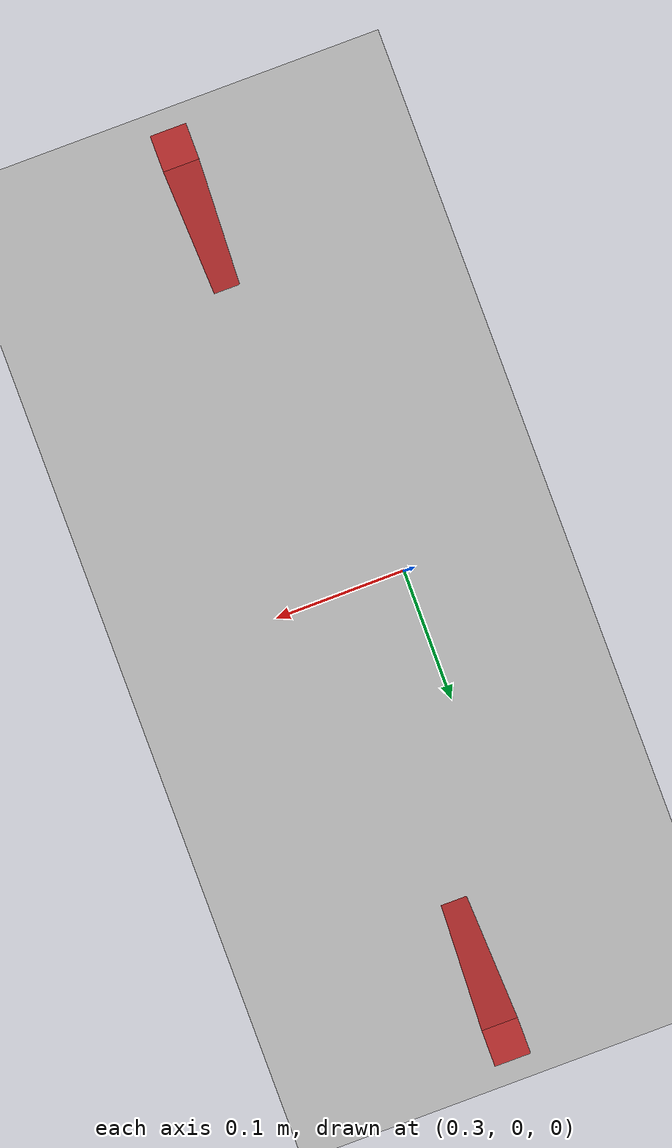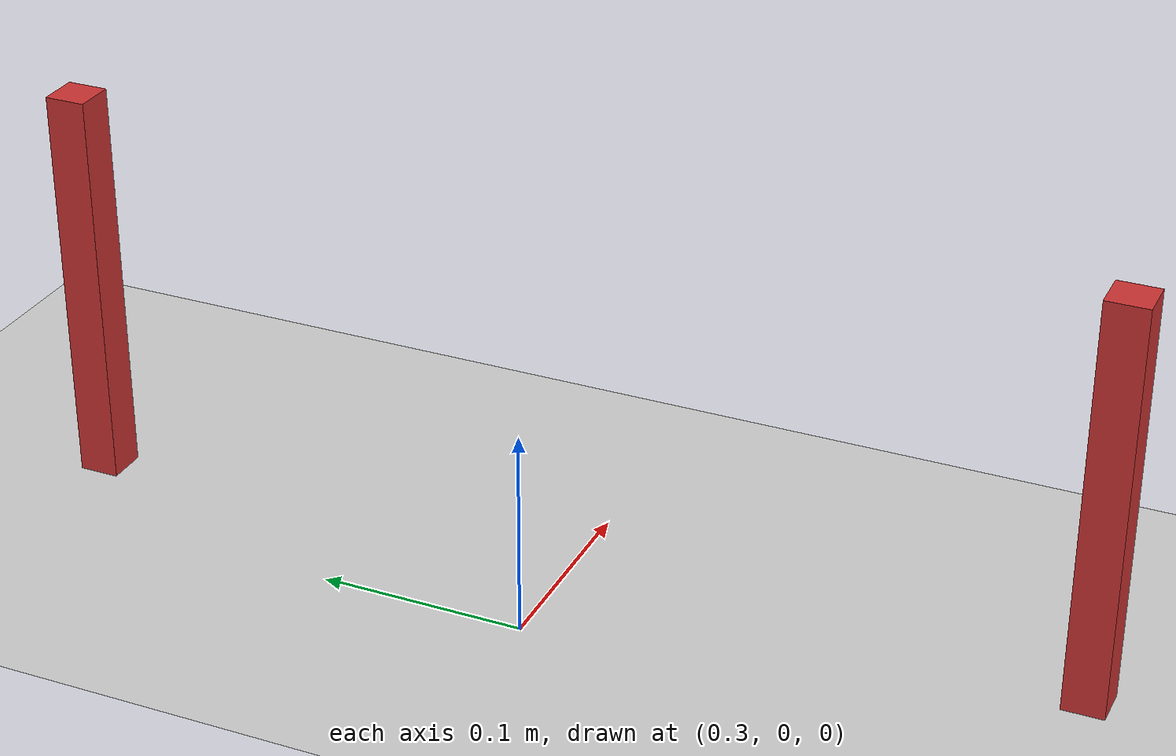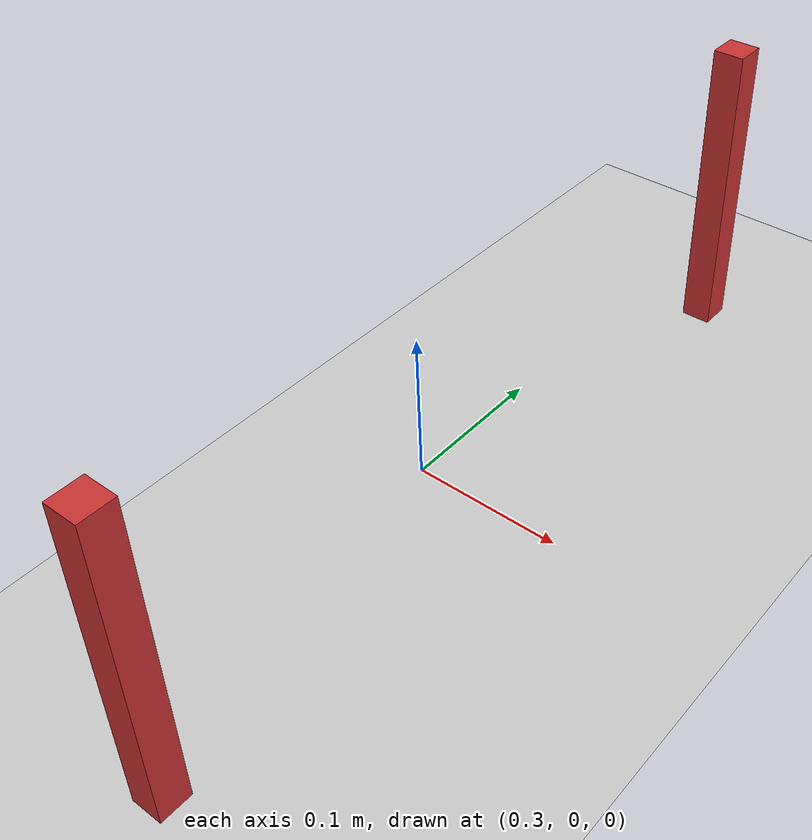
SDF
<?xml version="1.0" ?>
<sdf version="1.12">
  <world name="default">
    <!-- Specify the physics engine -->
    <physics name="default_physics" type="dart">
      <max_step_size>0.001</max_step_size>
      <real_time_factor>1</real_time_factor>
      <real_time_update_rate>1000</real_time_update_rate>
    </physics>
    <plugin name="gz::sim::systems::Physics" filename="gz-sim-physics-system"/>
    <plugin name="gz::sim::systems::UserCommands" filename="gz-sim-user-commands-system"/>
    <plugin name="gz::sim::systems::SceneBroadcaster" filename="gz-sim-scene-broadcaster-system"/>
    <plugin name="gz::sim::systems::Contact" filename="gz-sim-contact-system"/>
    <gravity>0 0 -9.8000000000000007</gravity>
    <magnetic_field>5.5644999999999998e-06 2.2875799999999999e-05 -4.2388400000000002e-05</magnetic_field>
    <atmosphere type="adiabatic"/>
    <scene>
      <ambient>0.400000006 0.400000006 0.400000006 1</ambient>
      <background>0.699999988 0.699999988 0.699999988 1</background>
      <shadows>true</shadows>
    </scene>

    <!-- Ground plane definition -->
    <model name="ground_plane">
      <static>true</static>
      <link name="link">
        <collision name="collision">
          <geometry>
            <plane>
              <normal>0 0 1</normal>
              <size>100 100</size>
            </plane>
          </geometry>
          <surface>
            <friction>
              <ode/>
            </friction>
            <bounce/>
            <contact/>
          </surface>
        </collision>
        <visual name="visual">
          <geometry>
            <plane>
              <normal>0 0 1</normal>
              <size>100 100</size>
            </plane>
          </geometry>
          <material>
            <ambient>0.800000012 0.800000012 0.800000012 1</ambient>
            <diffuse>0.800000012 0.800000012 0.800000012 1</diffuse>
            <specular>0.800000012 0.800000012 0.800000012 1</specular>
          </material>
        </visual>
        <pose>0 0 0 0 0 0</pose>
        <inertial>
          <pose>0 0 0 0 0 0</pose>
          <mass>1</mass>
          <inertia>
            <ixx>1</ixx>
            <ixy>0</ixy>
            <ixz>0</ixz>
            <iyy>1</iyy>
            <iyz>0</iyz>
            <izz>1</izz>
          </inertia>
        </inertial>
        <enable_wind>false</enable_wind>
      </link>
      <pose>0 0 0 0 0 0</pose>
      <self_collide>false</self_collide>
    </model>

    <!-- Sun/light definition -->
    <light name="sun" type="directional">
      <pose>0 0 10 0 0 0</pose>
      <cast_shadows>true</cast_shadows>
      <intensity>1</intensity>
      <direction>-0.5 0.10000000000000001 -0.90000000000000002</direction>
      <diffuse>0.800000012 0.800000012 0.800000012 1</diffuse>
      <specular>0.200000003 0.200000003 0.200000003 1</specular>
      <attenuation>
        <range>1000</range>
        <linear>0.01</linear>
        <constant>0.90000000000000002</constant>
        <quadratic>0.001</quadratic>
      </attenuation>
      <spot>
        <inner_angle>0</inner_angle>
        <outer_angle>0</outer_angle>
        <falloff>0</falloff>
      </spot>
    </light>

    <!-- Vertical stick -->
    <model name="vertical_stick_1">
      <static>true</static>
      <pose>0.35 -0.25 0 0 0 0</pose> <!-- Position the stick in the world frame -->
      <link name="stick_link">
        <pose>0 0 0.1 0 0 0</pose> <!-- Position the link at the base of the stick -->
        <visual name="visual">
          <geometry>
            <box>
              <size>0.02 0.02 0.2</size> <!-- width, depth, height -->
            </box>
          </geometry>
          <material>
            <ambient>0.9 0.1 0.1 1</ambient>
            <diffuse>0.8 0.2 0.2 1</diffuse>
          </material>
        </visual>
        <collision name="collision">
          <geometry>
            <box>
              <size>0.02 0.02 0.2</size>
            </box>
          </geometry>
        </collision>
      </link>
    </model>

    <model name="vertical_stick_2">
      <static>true</static>
      <pose>0.35 0.25 0 0 0 0</pose> <!-- Position the stick in the world frame -->
      <link name="stick_link">
        <pose>0 0 0.1 0 0 0</pose> <!-- Position the link at the base of the stick -->
        <visual name="visual">
          <geometry>
            <box>
              <size>0.02 0.02 0.2</size> <!-- width, depth, height -->
            </box>
          </geometry>
          <material>
            <ambient>0.9 0.1 0.1 1</ambient>
            <diffuse>0.8 0.2 0.2 1</diffuse>
          </material>
        </visual>
        <collision name="collision">
          <geometry>
            <box>
              <size>0.02 0.02 0.2</size>
            </box>
          </geometry>
        </collision>
      </link>
    </model>

  </world>
</sdf>
